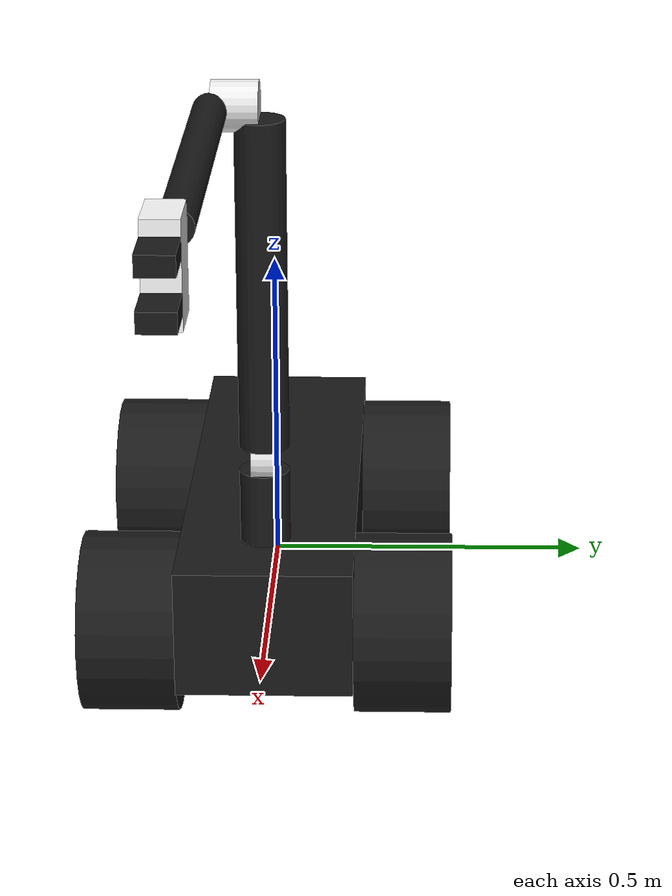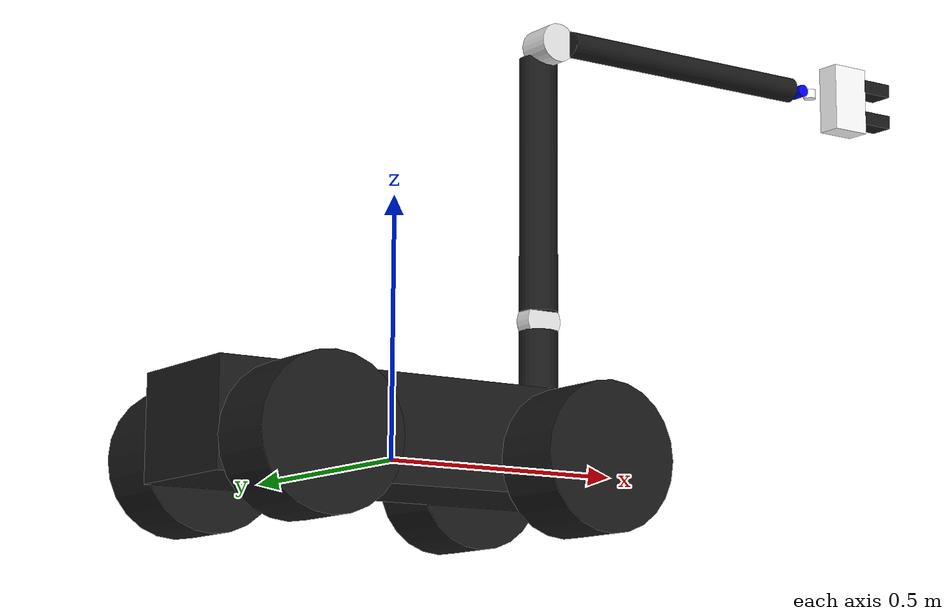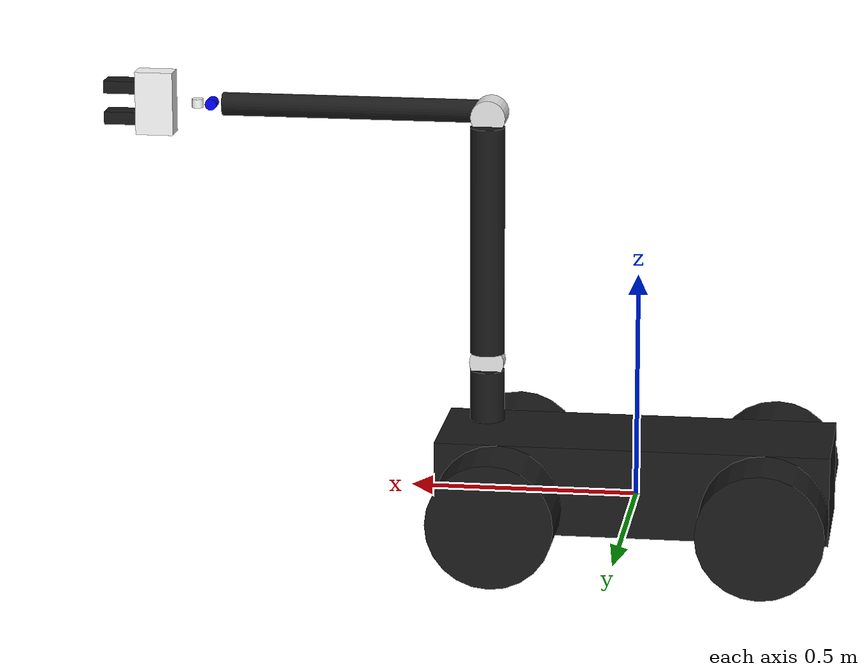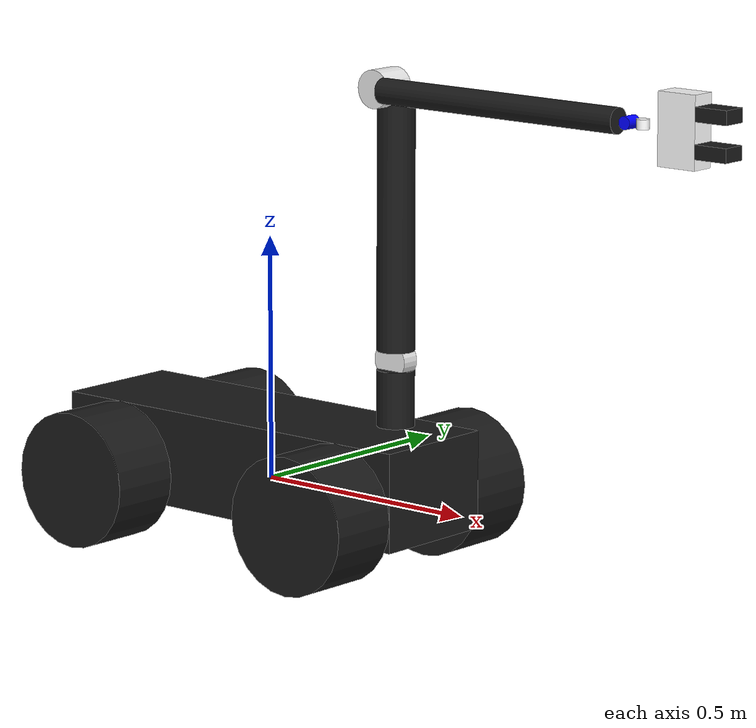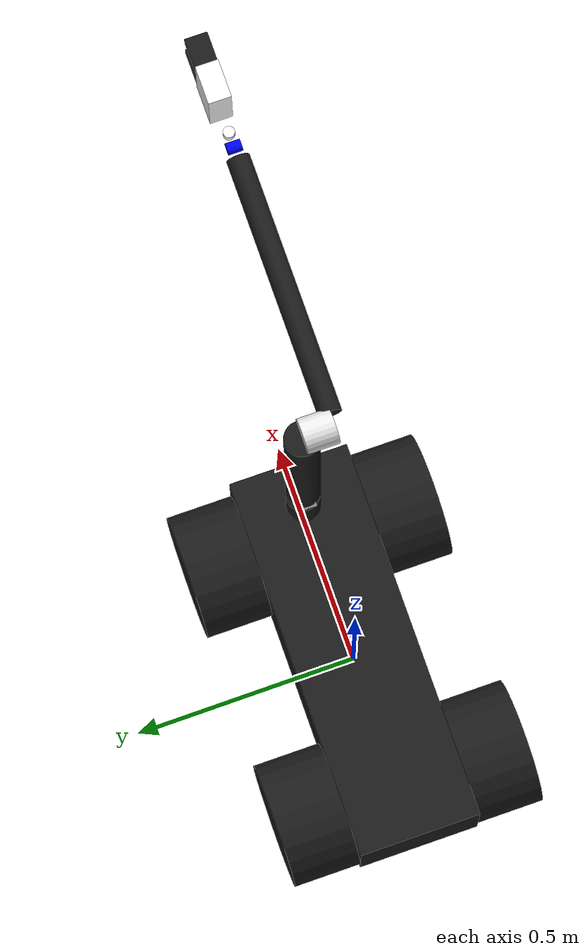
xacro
<?xml version="1.0"?>
<robot xmlns:xacro="http://www.ros.org/wiki/xacro" name="fister_roboto">
    <include filename="$(find hdt)/config/urdf/common.xacro"/>
    <include filename="$(find hdt)/config/urdf/talon.xacro"/>
    <include filename="$(find hdt)/config/urdf/hdt.xacro"/>
    <include filename="$(find hdt)/config/urdf/fake_gripper.xacro"/>

    <xacro:talon />
    <xacro:hdt_arm mounting_link="base_link" mounting_origin="${base_length/2-0.1} 0.0 ${wheel_radius}"/>
    <xacro:fake_gripper mounting_link="arm_7_gripper_lift_link" mounting_origin="${length7+0.075} 0.0 0.0"/>
</robot>

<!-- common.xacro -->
<robot xmlns:xacro="http://www.ros.org/wiki/xacro">
    <xacro:property name="pi" value="3.1415926535897931"/>
    <xacro:property name="inches" value="0.0254"/>
    <xacro:property name="degrees" value="0.017453293"/>
</robot>

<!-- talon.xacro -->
<robot xmlns:xacro="http://www.ros.org/wiki/xacro" name="talon">
    <xacro:property name="base_length" value="0.864" />
    <xacro:property name="wheel_radius" value="0.14" />
    <xacro:property name="track_width" value="0.15" />
    <xacro:property name="base_width" value="0.272" />
    <xacro:property name="base_height" value="0.2" />

    <include filename="$(find hdt_description)/urdf/common.xacro"/>
    <include filename="$(find hdt_description)/urdf/hdt_gazebo_urdf.xacro"/>

    <!-- macro to instantiate a wheel on the talon -->
    <xacro:macro name="talon_wheel" params="suffix parent *origin">
        <joint name="wheel_${suffix}_enc" type="continuous">
            <parent link="base_link"/>
            <child link="wheel_${suffix}"/>
            <!-- Why were the limits previously set to +/- 175 degrees - Andrew -->
            <limit lower="${-180*degrees}" upper="${180*degrees}" effort="45" velocity="0.38"/>
            <axis xyz="0 1 0"/>
            <xacro:insert_block name="origin"/>
            <dynamics damping="10" friction="1.0"/>
        </joint>

        <link name="wheel_${suffix}">
            <visual>
                <geometry>
                    <cylinder length="${track_width}" radius="${wheel_radius}"/>
                </geometry>
                <origin rpy="${pi/2} 0 0" xyz="0.0 0.0 0.0"/>
                <material name="black">
                    <color rgba="0.1 0.1 0.1 1"/>
                </material>
            </visual>
            <collision>
                <geometry>
                    <cylinder length="${track_width}" radius="${wheel_radius}"/>
                </geometry>
                <origin rpy="${pi/2} 0 0" xyz="0.0 0.0 0.0"/>
            </collision>
            <inertial>
                <mass value="5"/>
                <inertia ixx="1.0" ixy="0.0" ixz="0.0" iyy="1.0" iyz="0.0" izz="1.0"/>
            </inertial>
        </link>
    </xacro:macro>

    <!-- macro to instantiate the talon -->
    <xacro:macro name="talon">
        <link name="base_link">
            <visual>
                <geometry>
                    <box size="${base_length} ${base_width} ${base_height}"/>
                </geometry>
                <!-- This value puts the robot on the ground, but has origin outside of the base -->
                <origin rpy="0 0 0" xyz="0.0 0.0 ${wheel_radius - base_height/2}"/>
                <material name="black">
                    <color rgba="0.1 0.1 0.1 1"/>
                </material>

            </visual>
            <collision>
                <geometry>
                    <box size="${base_length} ${base_width} ${base_height}"/>
                </geometry>
                <!-- This value puts the robot on the ground, but has origin outside of the base -->
                <origin rpy="0 0 0" xyz="0.0 0.0 ${wheel_radius - base_height/2}"/>
            </collision>
            <inertial>
                <mass value="40"/>
                <inertia ixx="1.0" ixy="0.0" ixz="0.0" iyy="1.0" iyz="0.0" izz="1.0"/>
            </inertial>
        </link>

        <xacro:talon_wheel suffix="front_left" parent="base_link" >
            <origin rpy="0 0 0" xyz="${base_length/2 - wheel_radius} ${base_width/2 + track_width/2} 0"/>
        </xacro:talon_wheel>
        <xacro:talon_wheel suffix="front_right" parent="base_link" >
            <origin rpy="0 0 0" xyz="${base_length/2 - wheel_radius} -${base_width/2 + track_width/2} 0"/>
        </xacro:talon_wheel>
        <xacro:talon_wheel suffix="rear_left" parent="base_link" >
            <origin rpy="0 0 0" xyz="-${base_length/2 - wheel_radius} ${base_width/2 + track_width/2} 0"/>
        </xacro:talon_wheel>
        <xacro:talon_wheel suffix="rear_right" parent="base_link" >
            <origin rpy="0 0 0" xyz="-${base_length/2 - wheel_radius} -${base_width/2 + track_width/2} 0"/>
        </xacro:talon_wheel>
    </xacro:macro>
</robot>

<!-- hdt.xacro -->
<robot xmlns:xacro="http://www.ros.org/wiki/xacro">
    <xacro:property name="length1" value="0.1524" />
    <xacro:property name="radius1" value="0.0381" />

    <xacro:property name="length2" value="0.0381" />
    <xacro:property name="radius2" value="0.0381" />

    <xacro:property name="length3" value="0.5461" />
    <xacro:property name="radius3" value="0.0381" />

    <xacro:property name="length4" value="0.06985" />
    <xacro:property name="radius4" value="0.0381" />

    <xacro:property name="length5" value="0.6223" />
    <xacro:property name="radius5" value="0.0254" />

    <xacro:property name="length6" value="0.03175" />
    <xacro:property name="radius6" value="0.0127" />

    <xacro:property name="length7" value="0.01905" />
    <xacro:property name="radius7" value="0.0127" />

    <include filename="$(find hdt)/config/urdf/common.xacro"/>

    <!-- macro to instantiate the hdt arm -->
    <xacro:macro name="hdt_arm" params="mounting_link mounting_origin">
        <joint name="arm_1_shoulder_twist" type="revolute">
            <parent link="${mounting_link}"/>
            <child link="arm_1_shoulder_twist_link"/>
            <limit lower="${-120*degrees}" upper="${120*degrees}" effort="10" velocity="0.38"/>
            <safety_controller soft_lower_limit="${-110*degrees}" soft_upper_limit="${110*degrees}" k_velocity="0"/>
            <axis xyz="0 0 1"/>
            <origin xyz="${mounting_origin}"/>
            <dynamics damping="10" friction="0.1"/>
        </joint>

        <link name="arm_1_shoulder_twist_link">
            <visual>
                <geometry>
                    <cylinder length="${length1-radius1}" radius="${radius1}"/>
                </geometry>
                <origin rpy="0 0 0" xyz="0.0 0.0 ${length1/2}"/>
                <material name="black">
                    <color rgba="0.1 0.1 0.1 1"/>
                </material>
            </visual>
            <collision>
                <geometry>
                    <cylinder length="${length1-radius1}" radius="${radius1}"/>
                </geometry>
                <origin rpy="0 0 0" xyz="0.0 0.0 ${length1/2}"/>
            </collision>
            <inertial>
                <mass value="1"/>
                <inertia ixx="1.0" ixy="0.0" ixz="0.0" iyy="1.0" iyz="0.0" izz="1.0"/>
                <origin xyz="0 0 ${length1/2}"/>
            </inertial>
        </link>

        <joint name="arm_2_shoulder_lift" type="revolute">
            <parent link="arm_1_shoulder_twist_link"/>
            <child link="arm_2_shoulder_lift_link"/>
            <limit lower="${-110*degrees}" upper="${110*degrees}" effort="10" velocity="0.38"/>
            <safety_controller soft_lower_limit="${-90*degrees}" soft_upper_limit="${90*degrees}" k_velocity="0"/>
            <axis xyz="0 0 -1"/>
            <origin xyz="0.0 0.0 ${length1}" rpy="${pi/2} 0 0"/>
            <dynamics damping="10" friction="0.1"/>
        </joint>

        <link name="arm_2_shoulder_lift_link" >
            <visual>
                <geometry>
                    <cylinder length="${length2}" radius="${radius2}"/>
                </geometry>
                <origin rpy="0 0 0" xyz="0.0 0 0"/>
                <material name="gray">
                    <color rgba="0.9 0.9 0.9 1"/>
                </material>
            </visual>
            <collision>
                <geometry>
                    <cylinder length="${length2}" radius="${radius2}"/>
                </geometry>
                <origin rpy="0 0 0" xyz="0.0 0 0"/>
            </collision>
            <inertial>
                <mass value="1"/>
                <inertia ixx="1.0" ixy="0.0" ixz="0.0" iyy="1.0" iyz="0.0" izz="1.0"/>
                <origin xyz="0 0 0"/>
            </inertial>
        </link>

        <joint name="arm_3_elbow_twist" type="revolute">
            <parent link="arm_2_shoulder_lift_link"/>
            <child link="arm_3_elbow_twist_link"/>
            <limit lower="${-150*degrees}" upper="${150*degrees}" effort="10" velocity="0.38"/>
            <safety_controller soft_lower_limit="${-130*degrees}" soft_upper_limit="${130*degrees}" k_velocity="0" />
            <axis xyz="0 0 1" />
            <origin xyz="0.0 0.0 0.0" rpy="${-pi/2} 0 0" />
            <dynamics damping="10" friction="0.1"/>
        </joint>

        <link name="arm_3_elbow_twist_link">
            <visual>
                <geometry>
                    <cylinder length="${length3-radius3}" radius="${radius3}"/>
                </geometry>
                <origin rpy="0 0 0" xyz="0.0 0.0 ${length3/2}"/>
                <material name="black"/>
            </visual>
            <collision>
                <geometry>
                    <cylinder length="${length3-radius3}" radius="${radius3}"/>
                    <!-- Note: There is a bug in ODE that prevents collision detection with cylinders -->
                </geometry>
                <origin rpy="0 0 0" xyz="0.0 0.0 ${length3/2}"/>
            </collision>
            <inertial>
                <mass value="1"/>
                <inertia ixx="1.0" ixy="0.0" ixz="0.0" iyy="1.0" iyz="0.0" izz="1.0"/>
                <origin xyz="0 0 ${length3/2}"/>
            </inertial>
        </link>

        <joint name="arm_4_elbow_lift" type="revolute">
            <parent link="arm_3_elbow_twist_link"/>
            <child link="arm_4_elbow_lift_link"/>
            <limit lower="${-110*degrees}" upper="${110*degrees}" effort="10" velocity="0.38"/>
            <safety_controller soft_lower_limit="${-105*degrees}" soft_upper_limit="${105*degrees}" k_velocity="0" />
            <axis xyz="0 0 -1"/>
            <origin xyz="0.0 0.0 ${length3}" rpy="${pi/2} ${pi/2} 0"/>
            <dynamics damping="10" friction="0.1"/>
        </joint>

        <link name="arm_4_elbow_lift_link">
            <visual>
                <geometry>
                    <cylinder length="${length4}" radius="${radius4}"/>
                </geometry>
                <origin rpy="0 0 0" xyz="0.0 0.0 ${length4/2}"/>
                <material name="gray"/>
            </visual>
            <collision>
                <geometry>
                    <cylinder length="${length4}" radius="${radius4}"/>
                </geometry>
                <origin rpy="0 0 0" xyz="0.0 0.0 ${length4/2}"/>
            </collision>
            <inertial>
                <mass value="1"/>
                <inertia ixx="1.0" ixy="0.0" ixz="0.0" iyy="1.0" iyz="0.0" izz="1.0"/>
                <origin xyz="0 0 ${length4/2}"/>
            </inertial>
        </link>

        <joint name="arm_5_wrist_twist" type="revolute">
            <parent link="arm_4_elbow_lift_link"/>
            <child link="arm_5_wrist_twist_link"/>
            <limit lower="${-85*degrees}" upper="${85*degrees}" effort="10" velocity="0.38"/>
            <safety_controller soft_lower_limit="${-85*degrees}" soft_upper_limit="${85*degrees}" k_velocity="0" />
            <axis xyz="0 0 1"/>
            <origin xyz="0.0 0.0 ${length4}" rpy="${-pi/2} 0 0"/>
            <dynamics damping="10" friction="0.1"/>
        </joint>

        <link name="arm_5_wrist_twist_link">
            <visual>
                <geometry>
                    <cylinder length="${length5-2*radius5}" radius="${radius5}"/>
                </geometry>
                <origin rpy="0 0 0" xyz="0.0 0.0 ${length5/2}"/>
                <material name="black"/>
            </visual>
            <collision>
                <geometry>
                    <cylinder length="${length5-radius5}" radius="${radius5}"/>
                    <!-- Note: There is a bug in ODE that prevents collision detection with cylinders -->
                </geometry>
                <origin rpy="0 0 0" xyz="0.0 0.0 ${length5/2}"/>
            </collision>
            <inertial>
                <mass value="1"/>
                <inertia ixx="1.0" ixy="0.0" ixz="0.0" iyy="1.0" iyz="0.0" izz="1.0"/>
                <origin xyz="0 0 ${length5/2}"/>
            </inertial>
        </link>

        <joint name="arm_6_wrist_lift" type="revolute">
            <parent link="arm_5_wrist_twist_link"/>
            <child link="arm_6_wrist_lift_link"/>
            <limit lower="${-40*degrees}" upper="${40*degrees}" effort="10" velocity="0.38"/>
            <safety_controller soft_lower_limit="${-40*degrees}" soft_upper_limit="${40*degrees}" k_velocity="0" />
            <axis xyz="0 0 -1"/>
            <origin xyz="0.0 0.0 ${length5}" rpy="${pi/2} -${pi/2} 0"/>
            <dynamics damping="10" friction="0.1"/>
        </joint>

        <link name="arm_6_wrist_lift_link">
            <visual>
                <geometry>
                    <cylinder length="${length6}" radius="${radius6}"/>
                </geometry>
                <origin rpy="0 0 0" xyz="0.0 0.0 0.0"/>
                <material name="gray">
                    <color rgba="0 0 1 1"/>
                </material>
            </visual>
            <collision>
                <geometry>
                    <cylinder length="${length6}" radius="${radius6}"/>
                </geometry>
                <origin rpy="0 0 0" xyz="0.0 0.0 0.0"/>
            </collision>
            <inertial>
                <mass value="1"/>
                <inertia ixx="1.0" ixy="0.0" ixz="0.0" iyy="1.0" iyz="0.0" izz="1.0"/>
            </inertial>
        </link>

        <joint name="arm_7_gripper_lift" type="revolute">
            <parent link="arm_6_wrist_lift_link"/>
            <child link="arm_7_gripper_lift_link"/>
            <limit lower="${-55*degrees}" upper="${55*degrees}" effort="10" velocity="0.38"/>
            <safety_controller soft_lower_limit="${-55*degrees}" soft_upper_limit="${55*degrees}" k_velocity="0" />
            <axis xyz="0 0 1"/>
            <origin xyz="${length6} 0 0" rpy="${-pi/2} 0 0"/>
            <dynamics damping="10" friction="0.1"/>
        </joint>

        <link name="arm_7_gripper_lift_link">
            <visual>
                <geometry>
                    <cylinder length="${length7}" radius="${radius7}"/>
                </geometry>
                <origin rpy="0 0 0" xyz="0.0 0.0 0.0"/>
                <material name="gray">
                    <color rgba="1 1 1 1"/>
                </material>
            </visual>
            <collision>
                <geometry>
                    <cylinder length="${length7}" radius="${radius7}"/>
                </geometry>
                <origin rpy="0 0 0" xyz="0.0 0.0 0.0"/>
            </collision>
            <inertial>
                <mass value="1"/>
                <inertia ixx="1.0" ixy="0.0" ixz="0.0" iyy="1.0" iyz="0.0" izz="1.0"/>
            </inertial>
        </link>

        <include filename="$(find hdt)/config/urdf/hdt_transmission.xacro"/>
    </xacro:macro>
</robot>

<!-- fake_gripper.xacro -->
<robot xmlns:xacro="http://www.ros.org/wiki/xacro">
    <include filename="$(find hdt)/config/urdf/common.xacro"/>

    <xacro:property name="gripper_base_length" value="0.084" />
    <xacro:property name="gripper_base_width" value="0.05" />
    <xacro:property name="gripper_base_height" value="0.14" />

    <xacro:property name="finger_span" value="0.0845" />

    <xacro:property name="finger_length" value="0.07" />
    <xacro:property name="finger_width" value="${gripper_base_width}" />
    <xacro:property name="finger_height" value="0.02775" />

    <!-- macro to instantiate the fake gripper -->
    <xacro:macro name="fake_gripper" params="mounting_link mounting_origin">
        <joint name="joint_gripper_base" type="fixed">
            <parent link="${mounting_link}"/>
            <child link="gripper_base"/>
            <axis xyz="0 0 1"/>
            <origin xyz="${mounting_origin}" rpy="0 0 0"/>
        </joint>

        <link name="gripper_base">
            <visual>
                <geometry>
                    <box size="${gripper_base_length} ${gripper_base_width} ${gripper_base_height}"/>
                </geometry>
                <origin xyz="0 0 0" rpy="0 0 0"/>
                <material name="black">
                    <color rgba="1 1 1 1"/>
                </material>
            </visual>
            <collision>
                <geometry>
                    <box size="${gripper_base_length} ${gripper_base_width} ${gripper_base_height}"/>
                </geometry>
            </collision>
            <inertial>
                <mass value="0.690"/>
                <inertia ixx="1.0" ixy="0.0" ixz="0.0" iyy="1.0" iyz="0.0" izz="1.0"/>
            </inertial>
        </link>

        <joint name="finger1" type="prismatic">
            <parent link="gripper_base"/>
            <child link="finger_link1"/>
            <limit lower="0.001" upper="0.042" effort="45" velocity="0.38"/>
            <axis xyz="0 0 1"/>
            <origin xyz="${0.5 * (gripper_base_length + finger_length)} 0 ${-0.5 * (gripper_base_height - finger_height)}"
                    rpy="0 0 0"/>
            <dynamics damping="10" friction="0.1"/>
        </joint>

        <link name="finger_link1">
            <visual>
                <geometry>
                    <box size="${finger_length} ${finger_width} ${finger_height}"/>
                </geometry>
                <material name="black"/>
            </visual>
            <collision>
                <geometry>
                    <box size="${finger_length} ${finger_width} ${finger_height}"/>
                </geometry>
            </collision>
            <inertial>
                <mass value="0.1"/>
                <inertia ixx="1.0" ixy="0.0" ixz="0.0" iyy="1.0" iyz="0.0" izz="1.0"/>
            </inertial>
        </link>

        <joint name="finger2" type="prismatic">
            <parent link="gripper_base"/>
            <child link="finger_link2"/>
            <limit lower="0.001" upper="0.042" effort="45" velocity="0.38"/>
            <axis xyz="0 0 1"/>
            <origin xyz="${0.5 * (gripper_base_length + finger_length)} 0 ${0.5 * (gripper_base_height - finger_height)}"
                    rpy="${pi} 0 0"/>
            <dynamics damping="10" friction="0.1"/>
        </joint>

        <link name="finger_link2">
            <visual>
                <geometry>
                    <box size="${finger_length} ${finger_width} ${finger_height}"/>
                </geometry>
                <material name="black"/>
            </visual>
            <collision>
                <geometry>
                    <box size="${finger_length} ${finger_width} ${finger_height}"/>
                </geometry>
            </collision>
            <inertial>
                <mass value="0.1"/>
                <inertia ixx="1.0" ixy="0.0" ixz="0.0" iyy="1.0" iyz="0.0" izz="1.0"/>
            </inertial>
        </link>
    </xacro:macro>
</robot>
